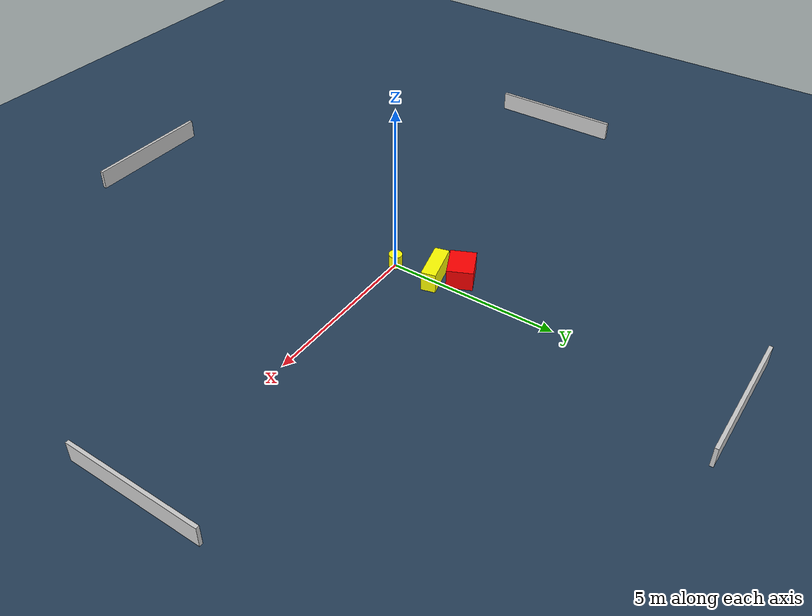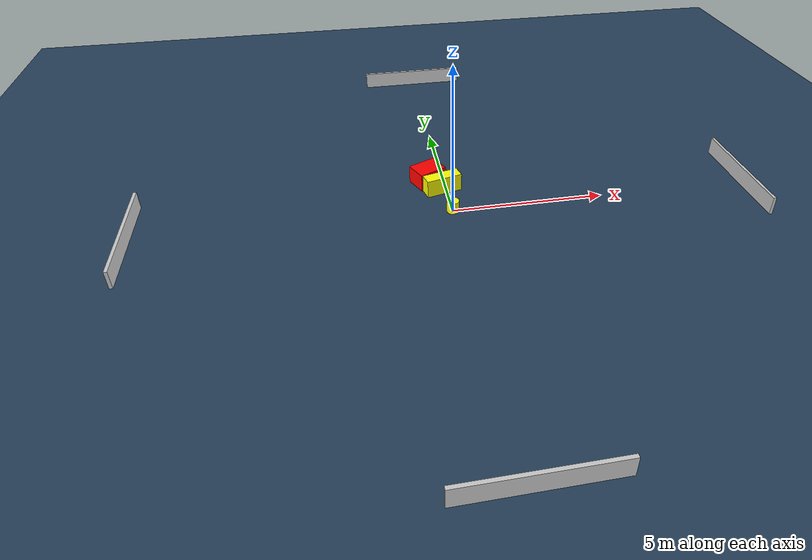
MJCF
<?xml version="1.0" ?>
<mujoco model="generated_environment">
  <option timestep="0.01" integrator="RK4" cone="elliptic"/>
  <default>
    <geom density="1"/>
  </default>
  <asset>
    <texture builtin="gradient" height="3072" name="skybox" rgb1="0.3 0.5 0.7" rgb2="0 0 0" type="skybox" width="512"/>
    <texture builtin="checker" height="300" name="groundplane" rgb1="0.2 0.3 0.4" rgb2="0.1 0.2 0.3" type="2d" width="300"/>
    <material name="groundplane" reflectance="0.2" texrepeat="5 5" texture="groundplane"/>
  </asset>
  <worldbody>
    <light dir="0 0 -1" directional="true" pos="0 0 1.5"/>
    <geom condim="3" friction="0.5 0.005 0.001" material="groundplane" name="floor" pos="0 0 0" size="0 0 0.05" type="plane"/>
    <body name="walls">
      <geom name="wall_1" condim="4" pos="-10.0 0.0 0.3" rgba="0.800000011920929 0.800000011920929 0.800000011920929 1.0" size="0.05 2.0 0.3" type="box"/>
      <geom name="wall_2" condim="4" pos="10.0 0.0 0.3" rgba="0.800000011920929 0.800000011920929 0.800000011920929 1.0" size="0.05 2.0 0.3" type="box"/>
      <geom name="wall_3" condim="4" pos="0.0 -10.0 0.3" rgba="0.800000011920929 0.800000011920929 0.800000011920929 1.0" size="2.0 0.05 0.3" type="box"/>
      <geom name="wall_4" condim="4" pos="0.0 10.0 0.3" rgba="0.800000011920929 0.800000011920929 0.800000011920929 1.0" size="2.0 0.05 0.3" type="box"/>
    </body>
    <body name="robot">
      <joint name="joint_x" type="slide" pos="0 0 0" axis="1 0 0"/>
      <joint name="joint_y" type="slide" pos="0 0 0" axis="0 1 0"/>
      <geom name="robot" type="cylinder" pos="0.0 0.0 0.2" size="0.2 0.2 0.0" mass="5.0" friction="1.0 0.005 0.0001" condim="4" rgba="1.0 1.0 0.0 1.0"/>
    </body>
    <body name="obstacle_1_movable">
      <geom name="obstacle_1_movable" condim="4" pos="-0.1356785349677752 1.2565182478974666 0.3" euler="0 0 283.82132166821407" friction="0.0 0.005 0.001" rgba="1.0 1.0 0.0 1.0" size="0.213372174398423 0.6111765841052627 0.3" type="box" mass="0.1"/>
      <joint type="free"/>
    </body>
    <body name="obstacle_2_static">
      <geom name="obstacle_2_static" condim="4" pos="-0.5430116125765916 1.8689917837624581 0.3" euler="0 0 114.99276033635357" friction="0.0 0.005 0.001" rgba="1.0 0.0 0.0 1.0" size="0.37839165096042854 0.4855727174379407 0.3" type="box"/>
    </body>
  </worldbody>
  <actuator>
    <motor name="actuator_x" joint="joint_x" gear="1" ctrlrange="-1 1"/>
    <motor name="actuator_y" joint="joint_y" gear="1" ctrlrange="-1 1"/>
  </actuator>
</mujoco>
